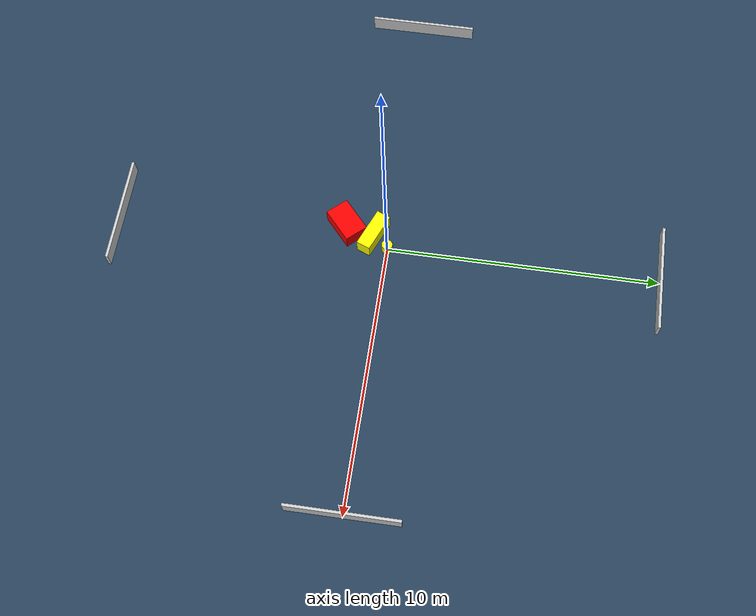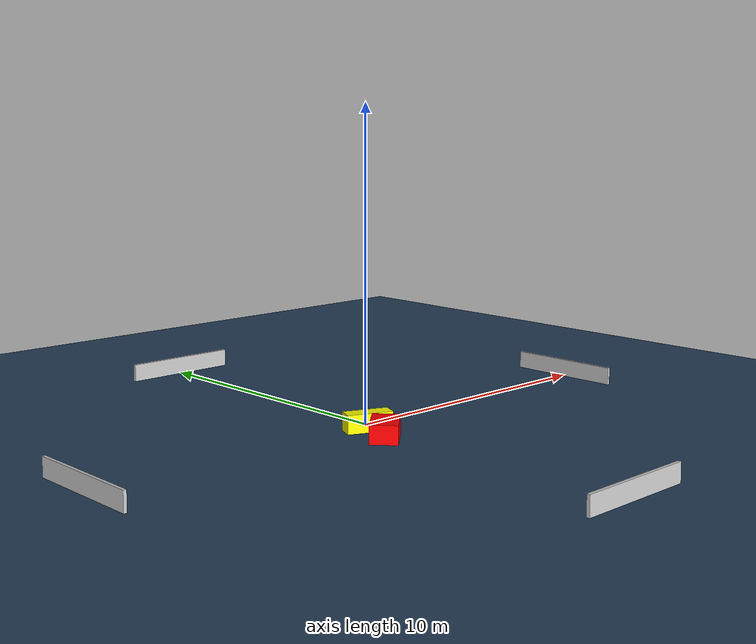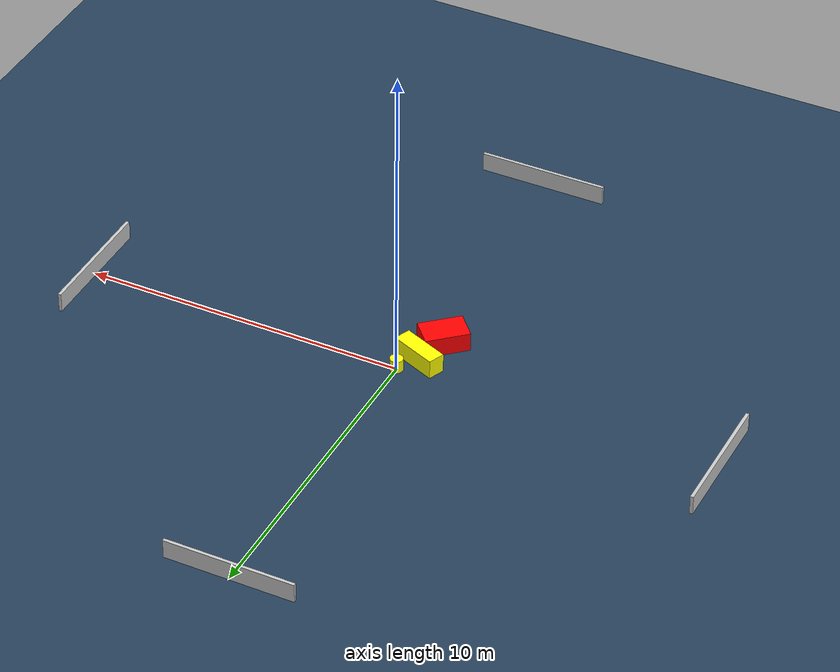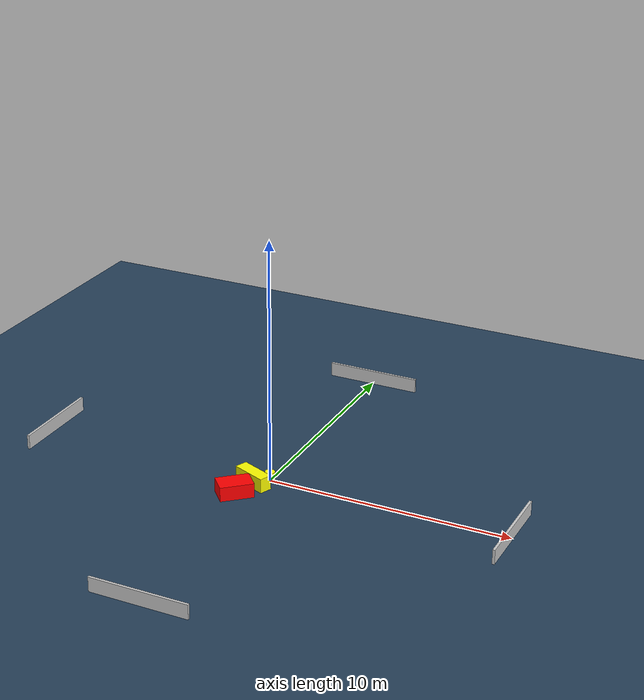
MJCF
<?xml version="1.0" ?>
<mujoco model="generated_environment">
  <option timestep="0.01" integrator="RK4" cone="elliptic"/>
  <default>
    <geom density="1"/>
  </default>
  <asset>
    <texture builtin="gradient" height="3072" name="skybox" rgb1="0.3 0.5 0.7" rgb2="0 0 0" type="skybox" width="512"/>
    <texture builtin="checker" height="300" name="groundplane" rgb1="0.2 0.3 0.4" rgb2="0.1 0.2 0.3" type="2d" width="300"/>
    <material name="groundplane" reflectance="0.2" texrepeat="5 5" texture="groundplane"/>
  </asset>
  <worldbody>
    <light dir="0 0 -1" directional="true" pos="0 0 1.5"/>
    <geom condim="3" friction="0.5 0.005 0.001" material="groundplane" name="floor" pos="0 0 0" size="0 0 0.05" type="plane"/>
    <body name="walls">
      <geom name="wall_1" condim="4" pos="-10.0 0.0 0.3" rgba="0.800000011920929 0.800000011920929 0.800000011920929 1.0" size="0.05 2.0 0.3" type="box"/>
      <geom name="wall_2" condim="4" pos="10.0 0.0 0.3" rgba="0.800000011920929 0.800000011920929 0.800000011920929 1.0" size="0.05 2.0 0.3" type="box"/>
      <geom name="wall_3" condim="4" pos="0.0 -10.0 0.3" rgba="0.800000011920929 0.800000011920929 0.800000011920929 1.0" size="2.0 0.05 0.3" type="box"/>
      <geom name="wall_4" condim="4" pos="0.0 10.0 0.3" rgba="0.800000011920929 0.800000011920929 0.800000011920929 1.0" size="2.0 0.05 0.3" type="box"/>
    </body>
    <body name="robot">
      <joint name="joint_x" type="slide" pos="0 0 0" axis="1 0 0"/>
      <joint name="joint_y" type="slide" pos="0 0 0" axis="0 1 0"/>
      <geom name="robot" type="cylinder" pos="0.0 0.0 0.2" size="0.2 0.2 0.0" mass="5.0" friction="1.0 0.005 0.0001" condim="4" rgba="1.0 1.0 0.0 1.0"/>
    </body>
    <body name="obstacle_1_movable">
      <geom name="obstacle_1_movable" condim="4" pos="-0.4441107102469379 -0.5683298986161767 0.3" euler="0 0 247.77171477173997" friction="0.0 0.005 0.001" rgba="1.0 1.0 0.0 1.0" size="0.2630126492798447 0.7444509716387275 0.3" type="box" mass="0.1"/>
      <joint type="free"/>
    </body>
    <body name="obstacle_2_static">
      <geom name="obstacle_2_static" condim="4" pos="-0.7202520770601906 -1.611065211600814 0.3" euler="0 0 42.01135718340098" friction="0.0 0.005 0.001" rgba="1.0 0.0 0.0 1.0" size="0.6824463089664075 0.44030908225772725 0.3" type="box"/>
    </body>
  </worldbody>
  <actuator>
    <motor name="actuator_x" joint="joint_x" gear="1" ctrlrange="-1 1"/>
    <motor name="actuator_y" joint="joint_y" gear="1" ctrlrange="-1 1"/>
  </actuator>
</mujoco>
